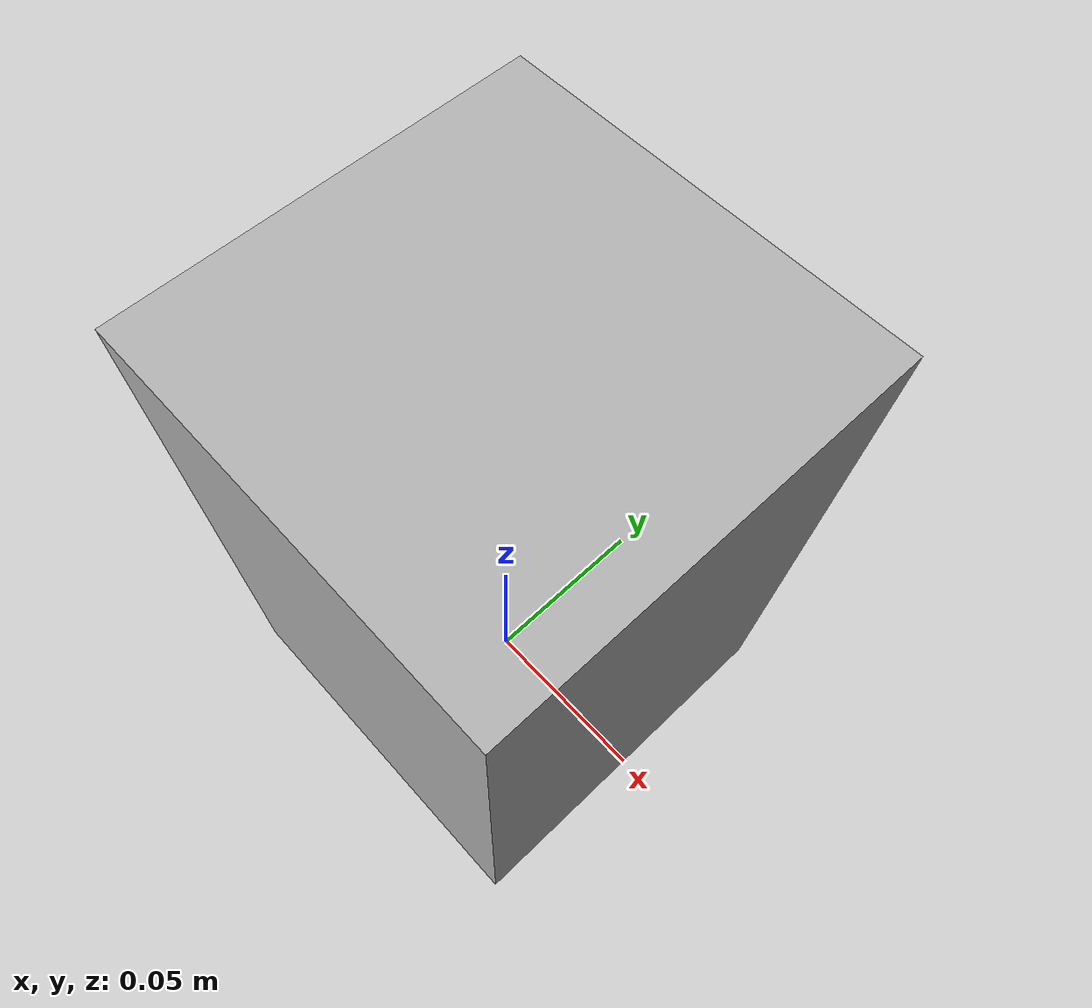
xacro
<?xml version="1.0" ?>
<robot name="cuboid" xmlns:xacro="http://www.ros.org/wiki/xacro">

<xacro:include filename="$(find cuboid_description)/urdf/materials.xacro" />
<xacro:include filename="$(find cuboid_description)/urdf/cuboid.trans" />
<xacro:include filename="$(find cuboid_description)/urdf/cuboid.gazebo" />
<link name="cuboid">
  <inertial>
    <origin rpy="0 0 0" xyz="-5.785000901771648e-17 -5.785000901771648e-17 0.07499999999999997"/>
    <mass value="0.0833244799999997"/>
    <inertia ixx="0.00035" ixy="-0.0" ixz="0.0" iyy="0.00035" iyz="0.0" izz="0.000238"/>
  </inertial>
  <visual>
    <origin rpy="0 0 0" xyz="0 0 0"/>
    <geometry>
      <mesh filename="package://cuboid_description/meshes/cuboid.stl" scale="0.001 0.001 0.001"/>
    </geometry>
    <material name="silver"/>
  </visual>
  <collision>
    <origin rpy="0 0 0" xyz="0 0 0"/>
    <geometry>
      <mesh filename="package://cuboid_description/meshes/cuboid.stl" scale="0.001 0.001 0.001"/>
    </geometry>
  </collision>
</link>

</robot>

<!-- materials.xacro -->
<robot name="cuboid" xmlns:xacro="http://www.ros.org/wiki/xacro" >

<material name="silver">
  <color rgba="0.700 0.700 0.700 1.000"/>
</material>

</robot>

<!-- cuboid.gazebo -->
<robot name="cuboid" xmlns:xacro="http://www.ros.org/wiki/xacro" >

<xacro:property name="cuboid_color" value="Gazebo/Orange" />

<gazebo reference="cuboid">
  <material>${cuboid_color}</material>
  <mu1>1.0</mu1>
  <mu2>1.0</mu2>
  <selfCollide>true</selfCollide>
  <gravity>true</gravity>
</gazebo>

</robot>
